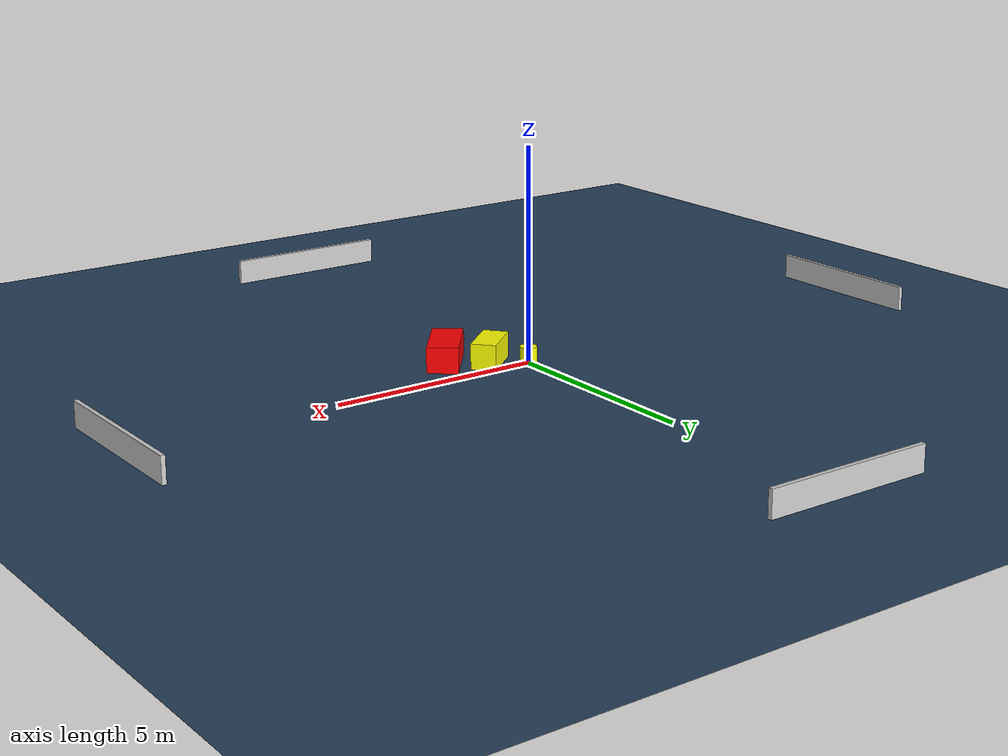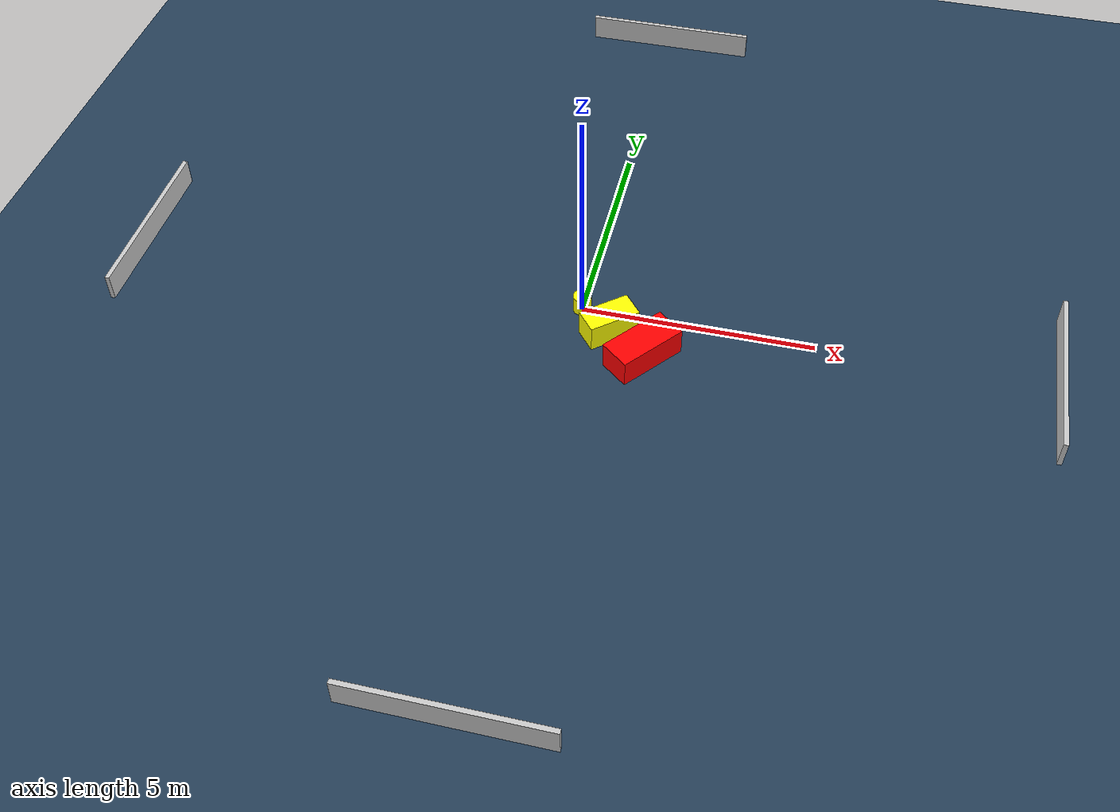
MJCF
<?xml version="1.0" ?>
<mujoco model="generated_environment">
  <option timestep="0.01" integrator="RK4" cone="elliptic"/>
  <default>
    <geom density="1"/>
  </default>
  <asset>
    <texture builtin="gradient" height="3072" name="skybox" rgb1="0.3 0.5 0.7" rgb2="0 0 0" type="skybox" width="512"/>
    <texture builtin="checker" height="300" name="groundplane" rgb1="0.2 0.3 0.4" rgb2="0.1 0.2 0.3" type="2d" width="300"/>
    <material name="groundplane" reflectance="0.2" texrepeat="5 5" texture="groundplane"/>
  </asset>
  <worldbody>
    <light dir="0 0 -1" directional="true" pos="0 0 1.5"/>
    <geom condim="3" friction="0.5 0.005 0.001" material="groundplane" name="floor" pos="0 0 0" size="0 0 0.05" type="plane"/>
    <body name="walls">
      <geom name="wall_1" condim="4" pos="-10.0 0.0 0.3" rgba="0.800000011920929 0.800000011920929 0.800000011920929 1.0" size="0.05 2.0 0.3" type="box"/>
      <geom name="wall_2" condim="4" pos="10.0 0.0 0.3" rgba="0.800000011920929 0.800000011920929 0.800000011920929 1.0" size="0.05 2.0 0.3" type="box"/>
      <geom name="wall_3" condim="4" pos="0.0 -10.0 0.3" rgba="0.800000011920929 0.800000011920929 0.800000011920929 1.0" size="2.0 0.05 0.3" type="box"/>
      <geom name="wall_4" condim="4" pos="0.0 10.0 0.3" rgba="0.800000011920929 0.800000011920929 0.800000011920929 1.0" size="2.0 0.05 0.3" type="box"/>
    </body>
    <body name="robot">
      <joint name="joint_x" type="slide" pos="0 0 0" axis="1 0 0"/>
      <joint name="joint_y" type="slide" pos="0 0 0" axis="0 1 0"/>
      <geom name="robot" type="cylinder" pos="0.0 0.0 0.2" size="0.2 0.2 0.0" mass="5.0" friction="1.0 0.005 0.0001" condim="4" rgba="1.0 1.0 0.0 1.0"/>
    </body>
    <body name="obstacle_1_movable">
      <geom name="obstacle_1_movable" condim="4" pos="0.7016443639918799 -0.5346697495782828 0.3" euler="0 0 219.96222937485" friction="0.0 0.005 0.001" rgba="1.0 1.0 0.0 1.0" size="0.5667839116720279 0.2902708956612792 0.3" type="box" mass="0.1"/>
      <joint type="free"/>
    </body>
    <body name="obstacle_2_static">
      <geom name="obstacle_2_static" condim="4" pos="1.5318155962378208 -1.1021566877314437 0.3" euler="0 0 51.27361800020901" friction="0.0 0.005 0.001" rgba="1.0 0.0 0.0 1.0" size="0.7637667505502503 0.3591923345821917 0.3" type="box"/>
    </body>
  </worldbody>
  <actuator>
    <motor name="actuator_x" joint="joint_x" gear="1" ctrlrange="-1 1"/>
    <motor name="actuator_y" joint="joint_y" gear="1" ctrlrange="-1 1"/>
  </actuator>
</mujoco>
